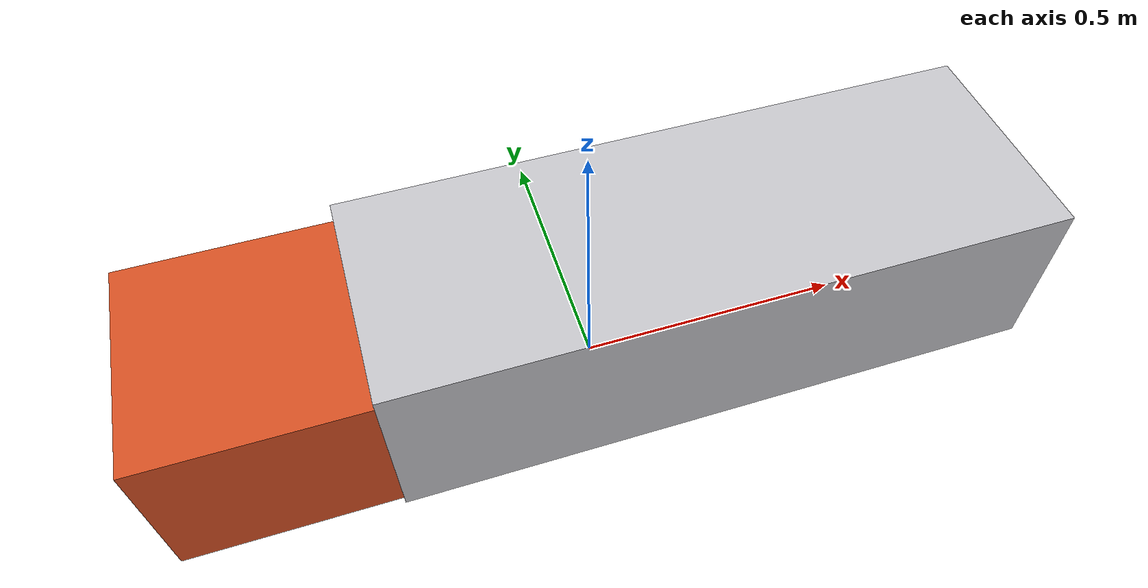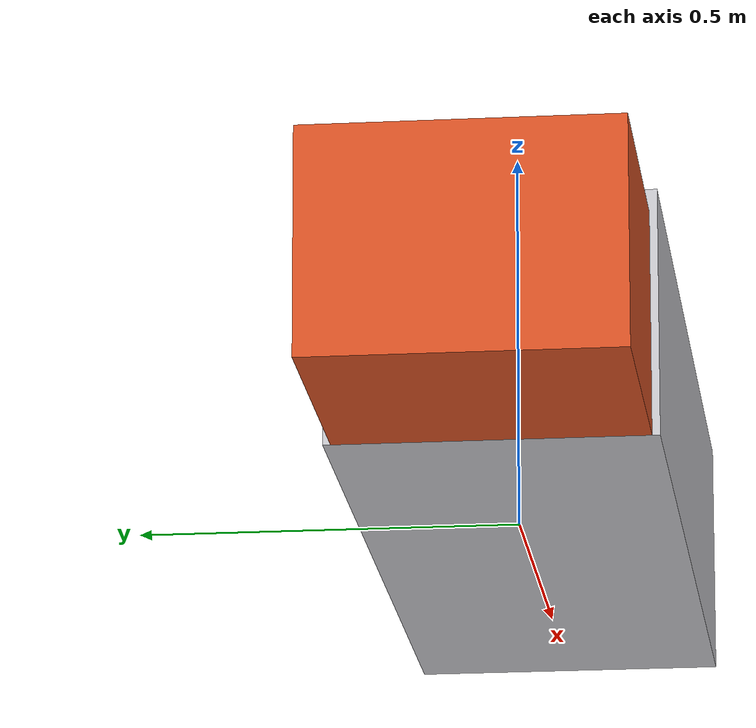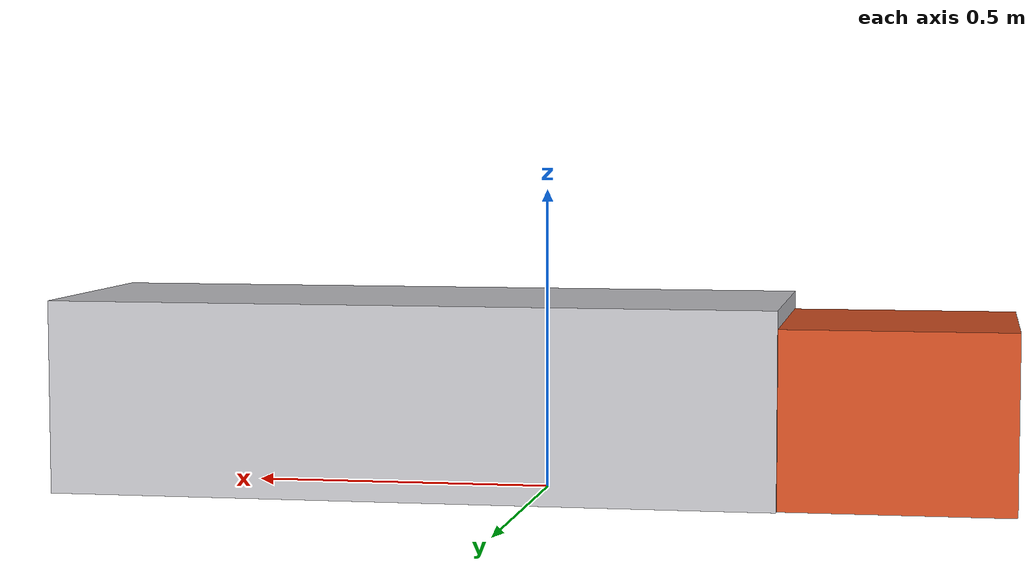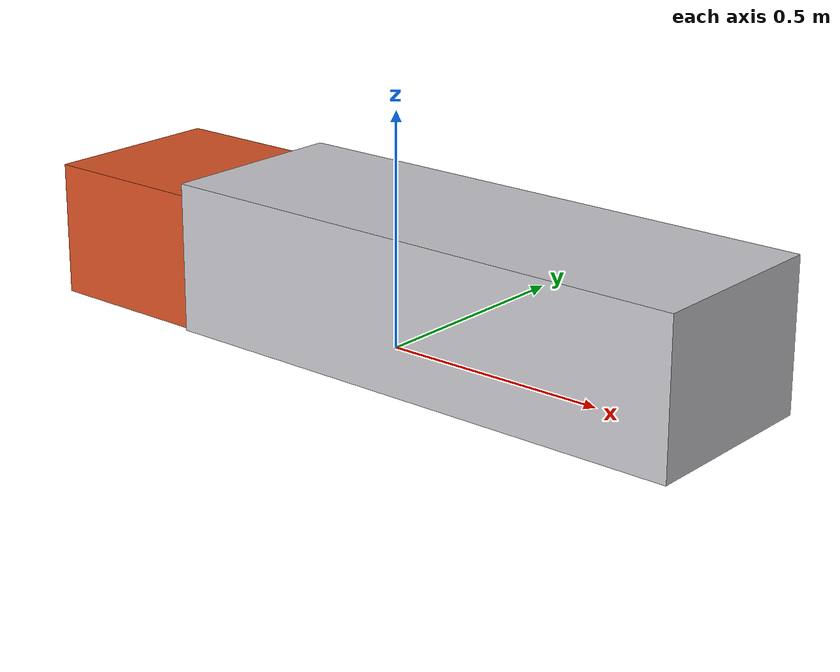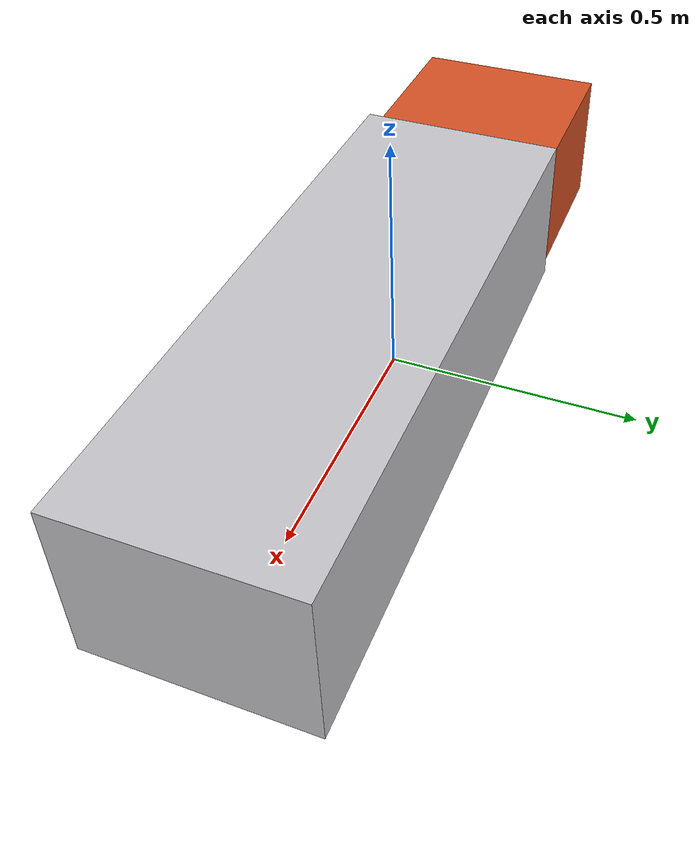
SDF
<sdf version="1.9">
  <model name="lite_big_truck">
    <static>true</static>
    <link name="truck_link">
      <collision name="cargo_collision">
        <pose>0.2 0 0.16 0 0 0</pose>
        <geometry>
          <box><size>1.2 0.42 0.32</size></box>
        </geometry>
      </collision>
      <collision name="cab_collision">
        <pose>-0.55 0 0.145 0 0 0</pose>
        <geometry>
          <box><size>0.45 0.4 0.29</size></box>
        </geometry>
      </collision>
      <visual name="cargo_visual">
        <pose>0.2 0 0.16 0 0 0</pose>
        <geometry>
          <box><size>1.2 0.42 0.32</size></box>
        </geometry>
        <material>
          <ambient>0.78 0.78 0.8 1</ambient>
          <diffuse>0.78 0.78 0.8 1</diffuse>
          <specular>0.04 0.04 0.04 1</specular>
        </material>
      </visual>
      <visual name="cab_visual">
        <pose>-0.55 0 0.145 0 0 0</pose>
        <geometry>
          <box><size>0.45 0.4 0.29</size></box>
        </geometry>
        <material>
          <ambient>0.85 0.32 0.14 1</ambient>
          <diffuse>0.85 0.32 0.14 1</diffuse>
          <specular>0.04 0.04 0.04 1</specular>
        </material>
      </visual>
    </link>
  </model>
</sdf>
